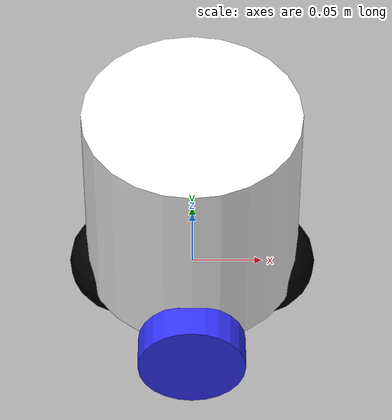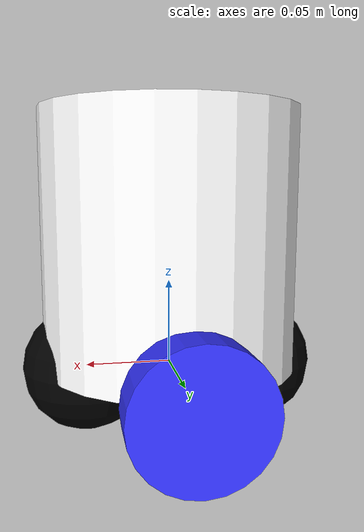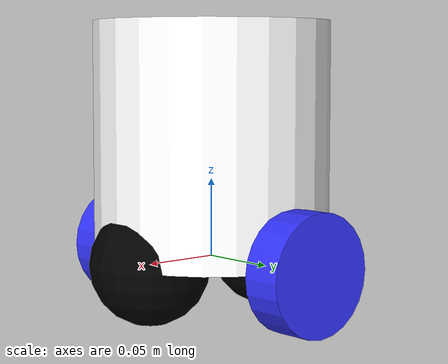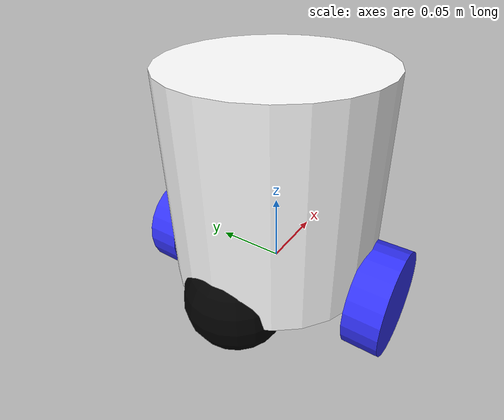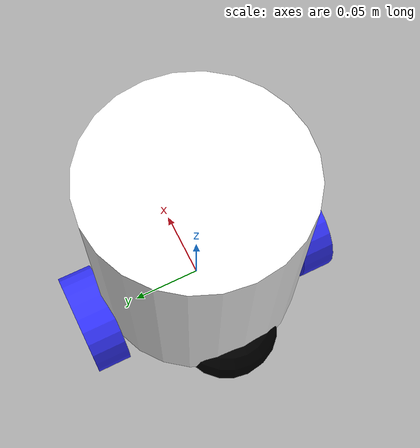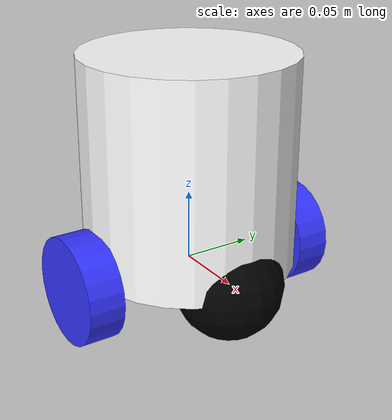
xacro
<?xml version="1.0"?>
<robot xmlns:xacro="http://www.ros.org/wiki/xacro"  name="robot">

    <xacro:include filename="robot_core.xacro" />

    <xacro:include filename="gazebo_control.xacro"/>

    <xacro:include filename="ros2_control.xacro"/>

    <xacro:include filename="lidar.xacro" />

</robot>

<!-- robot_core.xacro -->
<robot xmlns:xacro="http://www.ros.org/wiki/xacro" >

    <xacro:include filename="inertial_macros.xacro"/>

    <material name="white">
        <color rgba="1 1 1 1" />
    </material>

    <material name="orange">
        <color rgba="1 0.3 0.1 1"/>
    </material>

    <material name="blue">
        <color rgba="0.2 0.2 1 1"/>
    </material>

    <material name="black">
        <color rgba="0 0 0 1"/>
    </material>

    <material name="red">
        <color rgba="1 0 0 1"/>
    </material>

    <!-- BASE LINK -->

    <link name="base_link">

    </link>

    <!-- CHASSIS LINK -->

    <joint name="chassis_joint" type="fixed">
        <parent link="base_link"/>
        <child link="chassis"/>
        <origin xyz="0.0 0.0 0.0"/>
    </joint>

    <link name="chassis">
        <visual>
            <origin xyz="0 0 0.075"/>
            <geometry>
                <cylinder radius="0.075" length="0.15"/>
            </geometry>
            <material name="white"/>
        </visual>
        <collision>
            <origin xyz="0 0 0.075"/>
            <geometry>
                <cylinder radius="0.075" length="0.15"/>
            </geometry>
        </collision>
        <xacro:inertial_cylinder mass="1.0" length="0.15" radius="0.075">
            <origin xyz="0 0 0" rpy="0 0 0"/>
        </xacro:inertial_cylinder>
    </link>

    <gazebo reference="chassis">
        <material>Gazebo/White</material>
    </gazebo>

    <!-- LEFT WHEEL LINK -->

    <joint name="left_wheel_joint" type="continuous">
        <parent link="base_link"/>
        <child link="left_wheel"/>
        <origin xyz="0 0.085 0" rpy="-${pi/2} 0 0" />
        <axis xyz="0 0 1"/>
    </joint>

    <link name="left_wheel">
        <visual>
            <geometry>
                <cylinder radius="0.0375" length="0.025"/>
            </geometry>
            <material name="blue"/>
        </visual>
        <collision>
            <geometry>
                <cylinder radius="0.0375" length="0.025"/>
            </geometry>
        </collision>
        <xacro:inertial_cylinder mass="0.05" length="0.025" radius="0.0375">
            <origin xyz="0 0 0" rpy="0 0 0"/>
        </xacro:inertial_cylinder>
    </link>

    <gazebo reference="left_wheel">
        <material>Gazebo/Blue</material>
    </gazebo>

    <!-- RIGHT WHEEL LINK -->

    <joint name="right_wheel_joint" type="continuous">
        <parent link="base_link"/>
        <child link="right_wheel"/>
        <origin xyz="0 -0.085 0" rpy="${pi/2} 0 0" />
        <axis xyz="0 0 -1"/>
    </joint>

    <link name="right_wheel">
        <visual>
            <geometry>
                <cylinder radius="0.0375" length="0.025"/>
            </geometry>
            <material name="blue"/>
        </visual>
        <collision>
            <geometry>
                <cylinder radius="0.0375" length="0.025"/>
            </geometry>
        </collision>
        <xacro:inertial_cylinder mass="0.05" length="0.025" radius="0.0375">
            <origin xyz="0 0 0" rpy="0 0 0"/>
        </xacro:inertial_cylinder>
    </link>

    <gazebo reference="right_wheel">
        <material>Gazebo/Blue</material>
    </gazebo>

    <!-- CASTER WHEEL LINK FRONT -->

    <joint name="caster_wheel_joint_front" type="fixed">
        <parent link="chassis"/>
        <child link="caster_wheel_front"/>
        <origin xyz="0.05 0 0"/>
    </joint>

    <link name="caster_wheel_front">
        <visual>
            <geometry>
                <sphere radius="0.0375"/>
            </geometry>
            <material name="black"/>
        </visual>
        <collision>
            <geometry>
                <sphere radius="0.0375"/>
            </geometry>
        </collision>
        <xacro:inertial_sphere mass="0.05" radius="0.0375">
            <origin xyz="0 0 0" rpy="0 0 0"/>
        </xacro:inertial_sphere>
    </link>

    <gazebo reference="caster_wheel_front">
        <material>Gazebo/Black</material>
        <mu1 value="0.001"/>
        <mu2 value="0.001"/>
    </gazebo>

     <!-- CASTER WHEEL LINK BACK -->

     <joint name="caster_wheel_joint_back" type="fixed">
        <parent link="chassis"/>
        <child link="caster_wheel_back"/>
        <origin xyz="-0.05 0 0"/>
    </joint>

    <link name="caster_wheel_back">
        <visual>
            <geometry>
                <sphere radius="0.0375"/>
            </geometry>
            <material name="black"/>
        </visual>
        <collision>
            <geometry>
                <sphere radius="0.0375"/>
            </geometry>
        </collision>
        <xacro:inertial_sphere mass="0.05" radius="0.0375">
            <origin xyz="0 0 0" rpy="0 0 0"/>
        </xacro:inertial_sphere>
    </link>

    <gazebo reference="caster_wheel_back">
        <material>Gazebo/Black</material>
        <mu1 value="0.001"/>
        <mu2 value="0.001"/>
    </gazebo>

</robot>

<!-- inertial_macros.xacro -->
<robot xmlns:xacro="http://www.ros.org/wiki/xacro" >

    <!-- Specify some standard inertial calculations https://en.wikipedia.org/wiki/List_of_moments_of_inertia -->
    <!-- These make use of xacro's mathematical functionality -->

    <xacro:macro name="inertial_sphere" params="mass radius *origin">
        <inertial>
            <xacro:insert_block name="origin"/>
            <mass value="${mass}" />
            <inertia ixx="${(2/5) * mass * (radius*radius)}" ixy="0.0" ixz="0.0"
                    iyy="${(2/5) * mass * (radius*radius)}" iyz="0.0"
                    izz="${(2/5) * mass * (radius*radius)}" />
        </inertial>
    </xacro:macro>

    <xacro:macro name="inertial_cylinder" params="mass length radius *origin">
        <inertial>
            <xacro:insert_block name="origin"/>
            <mass value="${mass}" />
            <inertia ixx="${(1/12) * mass * (3*radius*radius + length*length)}" ixy="0.0" ixz="0.0"
                    iyy="${(1/12) * mass * (3*radius*radius + length*length)}" iyz="0.0"
                    izz="${(1/2) * mass * (radius*radius)}" />
        </inertial>
    </xacro:macro>

</robot>

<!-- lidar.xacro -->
<robot xmlns:xacro="http://www.ros.org/wiki/xacro" >

    <joint name="laser_joint" type="fixed">
        <parent link="chassis"/>
        <child link="laser_frame"/>
        <origin xyz="0.0 0 0.15" rpy="0 0 0"/>
    </joint>

    <link name="laser_frame">
        <visual>
            <origin xyz="0 0 -0.04"/>
            <geometry>
                <cylinder radius="0.05" length="0.04"/>
            </geometry>
            <material name="black"/>
        </visual>
        <collision>
            <geometry>
                <cylinder radius="0.05" length="0.04"/>
            </geometry>
        </collision>
        <xacro:inertial_cylinder mass="0.1" length="0.04" radius="0.05">
            <origin xyz="0 0 0" rpy="0 0 0"/>
        </xacro:inertial_cylinder>
    </link>

    <gazebo reference="laser_frame">
        <material>Gazebo/Black</material>

        <sensor name="laser" type="ray">
            <pose> 0 0 0 0 0 0 </pose>
            <visualize>false</visualize>
            <update_rate>10</update_rate>
            <ray>
                <scan>
                    <horizontal>
                        <samples>360</samples>
                        <min_angle>-3.14</min_angle>
                        <max_angle>3.14</max_angle>
                    </horizontal>
                </scan>
                <range>
                    <min>0.3</min>
                    <max>12</max>
                </range>
            </ray>
            <plugin name="laser_controller" filename="libgazebo_ros_ray_sensor.so">
                <ros>
                    <argument>~/out:=scan</argument>
                </ros>
                <output_type>sensor_msgs/LaserScan</output_type>
                <frame_name>laser_frame</frame_name>
            </plugin>
        </sensor>
    </gazebo>

</robot>
